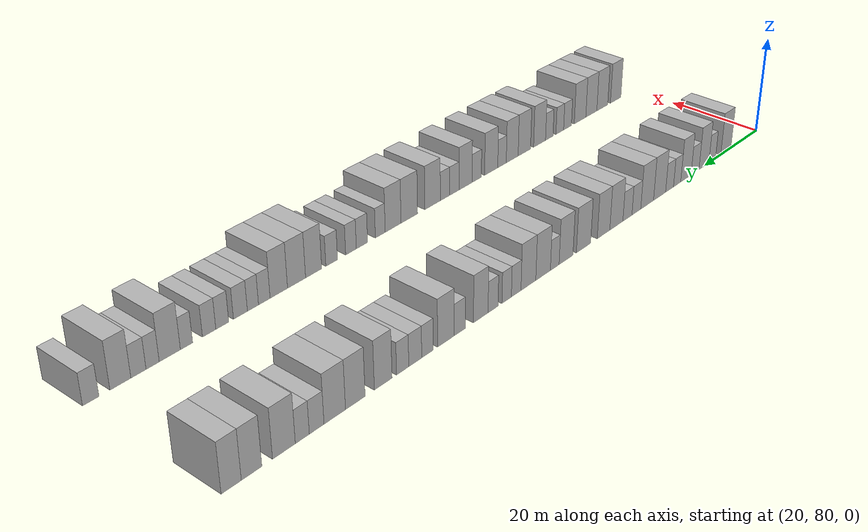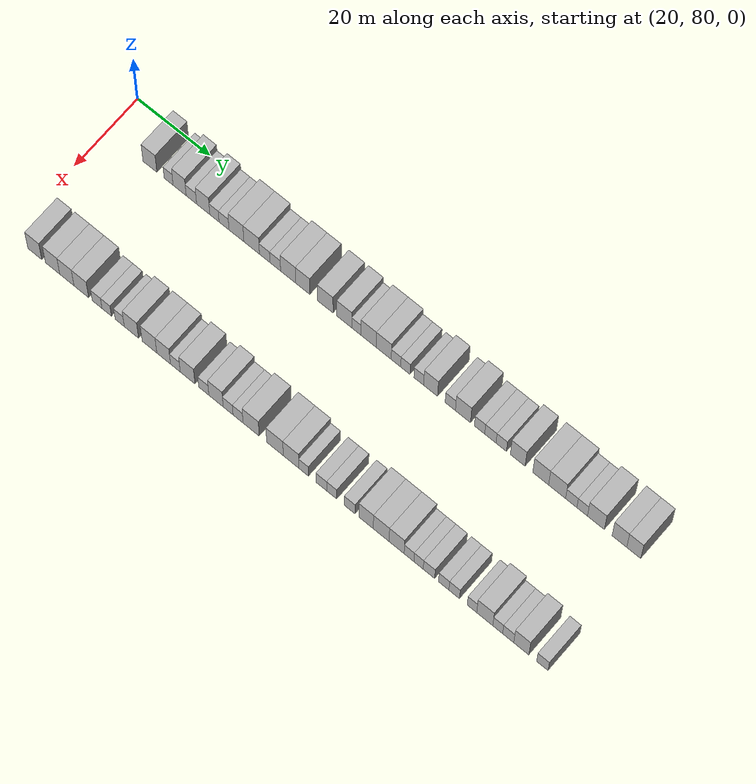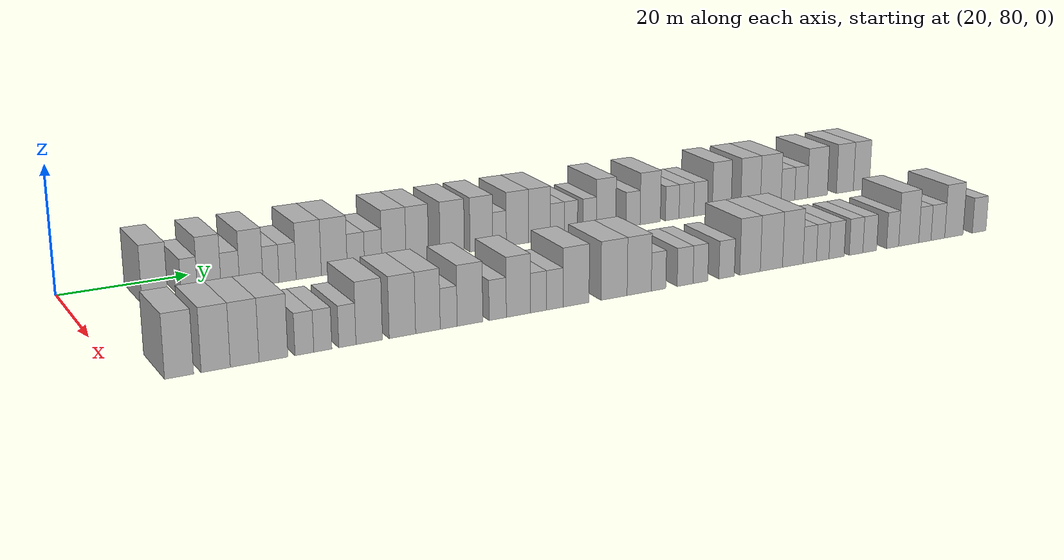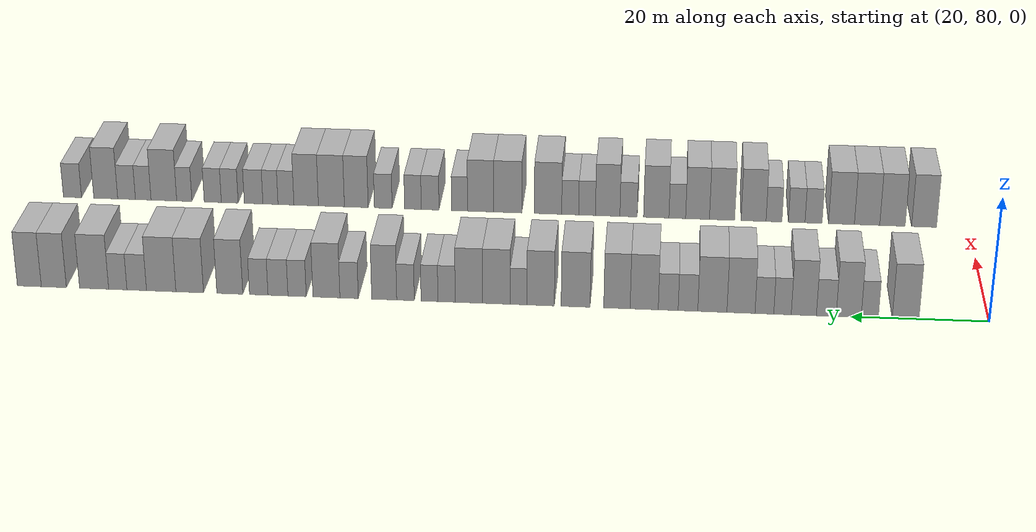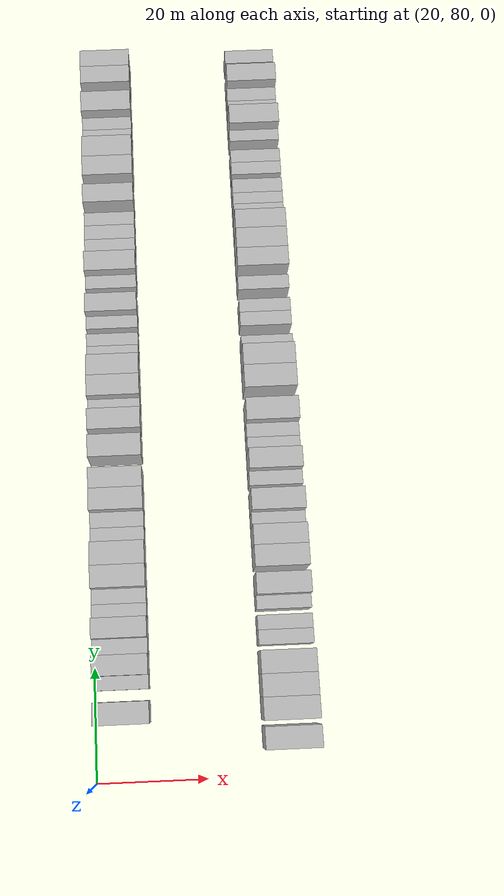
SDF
<sdf version="1.6">
 <world name="default">
  <model name="building_72">
   <static>1</static>
   <pose>25.0000 92.0905 0 0.000000 0.000000 0.000000</pose>
   <link name="link">
    <pose>0 0 4.50 0 0 0</pose>
    <collision name="collision"><geometry><box><size>10.0000 3.8415 9.0000</size></box></geometry></collision>
    <visual name="visual">
     <cast_shadows>0</cast_shadows>
     <geometry><box><size>10.0000 3.8415 9.0000</size></box></geometry>
     <material>
      <script>
       <uri>model://HANNAS_wall/materials/scripts</uri>
       <uri>model://HANNAS_wall/materials/textures</uri>
       <name>vrc/HANNAS_wall</name>
      </script>
     </material>
    </visual>
   </link>
  </model>
  <model name="building_73">
   <static>1</static>
   <pose>25.0000 97.2475 0 0.000000 0.000000 0.000000</pose>
   <link name="link">
    <pose>0 0 3.00 0 0 0</pose>
    <collision name="collision"><geometry><box><size>10.0000 2.4726 6.0000</size></box></geometry></collision>
    <visual name="visual">
     <cast_shadows>0</cast_shadows>
     <geometry><box><size>10.0000 2.4726 6.0000</size></box></geometry>
     <material>
      <script>
       <uri>model://HANNAS_wall/materials/scripts</uri>
       <uri>model://HANNAS_wall/materials/textures</uri>
       <name>vrc/HANNAS_wall</name>
      </script>
     </material>
    </visual>
   </link>
  </model>
  <model name="building_74">
   <static>1</static>
   <pose>25.0000 100.2885 0 0.000000 0.000000 0.000000</pose>
   <link name="link">
    <pose>0 0 4.50 0 0 0</pose>
    <collision name="collision"><geometry><box><size>10.0000 3.6093 9.0000</size></box></geometry></collision>
    <visual name="visual">
     <cast_shadows>0</cast_shadows>
     <geometry><box><size>10.0000 3.6093 9.0000</size></box></geometry>
     <material>
      <script>
       <uri>model://HANNAS_wall/materials/scripts</uri>
       <uri>model://HANNAS_wall/materials/textures</uri>
       <name>vrc/HANNAS_wall</name>
      </script>
     </material>
    </visual>
   </link>
  </model>
  <model name="building_75">
   <static>1</static>
   <pose>25.0000 103.5223 0 0.000000 0.000000 0.000000</pose>
   <link name="link">
    <pose>0 0 3.00 0 0 0</pose>
    <collision name="collision"><geometry><box><size>10.0000 2.8584 6.0000</size></box></geometry></collision>
    <visual name="visual">
     <cast_shadows>0</cast_shadows>
     <geometry><box><size>10.0000 2.8584 6.0000</size></box></geometry>
     <material>
      <script>
       <uri>model://HANNAS_wall/materials/scripts</uri>
       <uri>model://HANNAS_wall/materials/textures</uri>
       <name>vrc/HANNAS_wall</name>
      </script>
     </material>
    </visual>
   </link>
  </model>
  <model name="building_76">
   <static>1</static>
   <pose>25.0000 106.7729 0 0.000000 0.000000 0.000000</pose>
   <link name="link">
    <pose>0 0 4.50 0 0 0</pose>
    <collision name="collision"><geometry><box><size>10.0000 3.6430 9.0000</size></box></geometry></collision>
    <visual name="visual">
     <cast_shadows>0</cast_shadows>
     <geometry><box><size>10.0000 3.6430 9.0000</size></box></geometry>
     <material>
      <script>
       <uri>model://HANNAS_wall/materials/scripts</uri>
       <uri>model://HANNAS_wall/materials/textures</uri>
       <name>vrc/HANNAS_wall</name>
      </script>
     </material>
    </visual>
   </link>
  </model>
  <model name="building_77">
   <static>1</static>
   <pose>25.0000 109.8580 0 0.000000 0.000000 0.000000</pose>
   <link name="link">
    <pose>0 0 3.00 0 0 0</pose>
    <collision name="collision"><geometry><box><size>10.0000 2.5271 6.0000</size></box></geometry></collision>
    <visual name="visual">
     <cast_shadows>0</cast_shadows>
     <geometry><box><size>10.0000 2.5271 6.0000</size></box></geometry>
     <material>
      <script>
       <uri>model://HANNAS_wall/materials/scripts</uri>
       <uri>model://HANNAS_wall/materials/textures</uri>
       <name>vrc/HANNAS_wall</name>
      </script>
     </material>
    </visual>
   </link>
  </model>
  <model name="building_78">
   <static>1</static>
   <pose>25.0000 112.4826 0 0.000000 0.000000 0.000000</pose>
   <link name="link">
    <pose>0 0 3.00 0 0 0</pose>
    <collision name="collision"><geometry><box><size>10.0000 2.7220 6.0000</size></box></geometry></collision>
    <visual name="visual">
     <cast_shadows>0</cast_shadows>
     <geometry><box><size>10.0000 2.7220 6.0000</size></box></geometry>
     <material>
      <script>
       <uri>model://HANNAS_wall/materials/scripts</uri>
       <uri>model://HANNAS_wall/materials/textures</uri>
       <name>vrc/HANNAS_wall</name>
      </script>
     </material>
    </visual>
   </link>
  </model>
  <model name="building_79">
   <static>1</static>
   <pose>25.0000 115.8834 0 0.000000 0.000000 0.000000</pose>
   <link name="link">
    <pose>0 0 4.50 0 0 0</pose>
    <collision name="collision"><geometry><box><size>10.0000 4.0797 9.0000</size></box></geometry></collision>
    <visual name="visual">
     <cast_shadows>0</cast_shadows>
     <geometry><box><size>10.0000 4.0797 9.0000</size></box></geometry>
     <material>
      <script>
       <uri>model://HANNAS_wall/materials/scripts</uri>
       <uri>model://HANNAS_wall/materials/textures</uri>
       <name>vrc/HANNAS_wall</name>
      </script>
     </material>
    </visual>
   </link>
  </model>
  <model name="building_80">
   <static>1</static>
   <pose>25.0000 120.0440 0 0.000000 0.000000 0.000000</pose>
   <link name="link">
    <pose>0 0 4.50 0 0 0</pose>
    <collision name="collision"><geometry><box><size>10.0000 4.2415 9.0000</size></box></geometry></collision>
    <visual name="visual">
     <cast_shadows>0</cast_shadows>
     <geometry><box><size>10.0000 4.2415 9.0000</size></box></geometry>
     <material>
      <script>
       <uri>model://HANNAS_wall/materials/scripts</uri>
       <uri>model://HANNAS_wall/materials/textures</uri>
       <name>vrc/HANNAS_wall</name>
      </script>
     </material>
    </visual>
   </link>
  </model>
  <model name="building_81">
   <static>1</static>
   <pose>25.0000 123.5947 0 0.000000 0.000000 0.000000</pose>
   <link name="link">
    <pose>0 0 3.00 0 0 0</pose>
    <collision name="collision"><geometry><box><size>10.0000 2.8599 6.0000</size></box></geometry></collision>
    <visual name="visual">
     <cast_shadows>0</cast_shadows>
     <geometry><box><size>10.0000 2.8599 6.0000</size></box></geometry>
     <material>
      <script>
       <uri>model://HANNAS_wall/materials/scripts</uri>
       <uri>model://HANNAS_wall/materials/textures</uri>
       <name>vrc/HANNAS_wall</name>
      </script>
     </material>
    </visual>
   </link>
  </model>
  <model name="building_82">
   <static>1</static>
   <pose>25.0000 126.4744 0 0.000000 0.000000 0.000000</pose>
   <link name="link">
    <pose>0 0 3.00 0 0 0</pose>
    <collision name="collision"><geometry><box><size>10.0000 2.8995 6.0000</size></box></geometry></collision>
    <visual name="visual">
     <cast_shadows>0</cast_shadows>
     <geometry><box><size>10.0000 2.8995 6.0000</size></box></geometry>
     <material>
      <script>
       <uri>model://HANNAS_wall/materials/scripts</uri>
       <uri>model://HANNAS_wall/materials/textures</uri>
       <name>vrc/HANNAS_wall</name>
      </script>
     </material>
    </visual>
   </link>
  </model>
  <model name="building_83">
   <static>1</static>
   <pose>25.0000 129.9780 0 0.000000 0.000000 0.000000</pose>
   <link name="link">
    <pose>0 0 4.50 0 0 0</pose>
    <collision name="collision"><geometry><box><size>10.0000 4.1078 9.0000</size></box></geometry></collision>
    <visual name="visual">
     <cast_shadows>0</cast_shadows>
     <geometry><box><size>10.0000 4.1078 9.0000</size></box></geometry>
     <material>
      <script>
       <uri>model://HANNAS_wall/materials/scripts</uri>
       <uri>model://HANNAS_wall/materials/textures</uri>
       <name>vrc/HANNAS_wall</name>
      </script>
     </material>
    </visual>
   </link>
  </model>
  <model name="building_84">
   <static>1</static>
   <pose>25.0000 133.9613 0 0.000000 0.000000 0.000000</pose>
   <link name="link">
    <pose>0 0 4.50 0 0 0</pose>
    <collision name="collision"><geometry><box><size>10.0000 3.8587 9.0000</size></box></geometry></collision>
    <visual name="visual">
     <cast_shadows>0</cast_shadows>
     <geometry><box><size>10.0000 3.8587 9.0000</size></box></geometry>
     <material>
      <script>
       <uri>model://HANNAS_wall/materials/scripts</uri>
       <uri>model://HANNAS_wall/materials/textures</uri>
       <name>vrc/HANNAS_wall</name>
      </script>
     </material>
    </visual>
   </link>
  </model>
  <model name="building_85">
   <static>1</static>
   <pose>25.0000 140.0159 0 0.000000 0.000000 0.000000</pose>
   <link name="link">
    <pose>0 0 4.50 0 0 0</pose>
    <collision name="collision"><geometry><box><size>10.0000 4.2505 9.0000</size></box></geometry></collision>
    <visual name="visual">
     <cast_shadows>0</cast_shadows>
     <geometry><box><size>10.0000 4.2505 9.0000</size></box></geometry>
     <material>
      <script>
       <uri>model://HANNAS_wall/materials/scripts</uri>
       <uri>model://HANNAS_wall/materials/textures</uri>
       <name>vrc/HANNAS_wall</name>
      </script>
     </material>
    </visual>
   </link>
  </model>
  <model name="building_86">
   <static>1</static>
   <pose>25.0000 145.1519 0 0.000000 0.000000 0.000000</pose>
   <link name="link">
    <pose>0 0 4.50 0 0 0</pose>
    <collision name="collision"><geometry><box><size>10.0000 4.0214 9.0000</size></box></geometry></collision>
    <visual name="visual">
     <cast_shadows>0</cast_shadows>
     <geometry><box><size>10.0000 4.0214 9.0000</size></box></geometry>
     <material>
      <script>
       <uri>model://HANNAS_wall/materials/scripts</uri>
       <uri>model://HANNAS_wall/materials/textures</uri>
       <name>vrc/HANNAS_wall</name>
      </script>
     </material>
    </visual>
   </link>
  </model>
  <model name="building_87">
   <static>1</static>
   <pose>25.0000 148.3967 0 0.000000 0.000000 0.000000</pose>
   <link name="link">
    <pose>0 0 3.00 0 0 0</pose>
    <collision name="collision"><geometry><box><size>10.0000 2.4683 6.0000</size></box></geometry></collision>
    <visual name="visual">
     <cast_shadows>0</cast_shadows>
     <geometry><box><size>10.0000 2.4683 6.0000</size></box></geometry>
     <material>
      <script>
       <uri>model://HANNAS_wall/materials/scripts</uri>
       <uri>model://HANNAS_wall/materials/textures</uri>
       <name>vrc/HANNAS_wall</name>
      </script>
     </material>
    </visual>
   </link>
  </model>
  <model name="building_88">
   <static>1</static>
   <pose>25.0000 151.6659 0 0.000000 0.000000 0.000000</pose>
   <link name="link">
    <pose>0 0 4.50 0 0 0</pose>
    <collision name="collision"><geometry><box><size>10.0000 4.0700 9.0000</size></box></geometry></collision>
    <visual name="visual">
     <cast_shadows>0</cast_shadows>
     <geometry><box><size>10.0000 4.0700 9.0000</size></box></geometry>
     <material>
      <script>
       <uri>model://HANNAS_wall/materials/scripts</uri>
       <uri>model://HANNAS_wall/materials/textures</uri>
       <name>vrc/HANNAS_wall</name>
      </script>
     </material>
    </visual>
   </link>
  </model>
  <model name="building_89">
   <static>1</static>
   <pose>25.0000 155.7220 0 0.000000 0.000000 0.000000</pose>
   <link name="link">
    <pose>0 0 4.50 0 0 0</pose>
    <collision name="collision"><geometry><box><size>10.0000 4.0421 9.0000</size></box></geometry></collision>
    <visual name="visual">
     <cast_shadows>0</cast_shadows>
     <geometry><box><size>10.0000 4.0421 9.0000</size></box></geometry>
     <material>
      <script>
       <uri>model://HANNAS_wall/materials/scripts</uri>
       <uri>model://HANNAS_wall/materials/textures</uri>
       <name>vrc/HANNAS_wall</name>
      </script>
     </material>
    </visual>
   </link>
  </model>
  <model name="building_90">
   <static>1</static>
   <pose>25.0000 159.0225 0 0.000000 0.000000 0.000000</pose>
   <link name="link">
    <pose>0 0 3.00 0 0 0</pose>
    <collision name="collision"><geometry><box><size>10.0000 2.5588 6.0000</size></box></geometry></collision>
    <visual name="visual">
     <cast_shadows>0</cast_shadows>
     <geometry><box><size>10.0000 2.5588 6.0000</size></box></geometry>
     <material>
      <script>
       <uri>model://HANNAS_wall/materials/scripts</uri>
       <uri>model://HANNAS_wall/materials/textures</uri>
       <name>vrc/HANNAS_wall</name>
      </script>
     </material>
    </visual>
   </link>
  </model>
  <model name="building_91">
   <static>1</static>
   <pose>25.0000 161.5485 0 0.000000 0.000000 0.000000</pose>
   <link name="link">
    <pose>0 0 3.00 0 0 0</pose>
    <collision name="collision"><geometry><box><size>10.0000 2.4933 6.0000</size></box></geometry></collision>
    <visual name="visual">
     <cast_shadows>0</cast_shadows>
     <geometry><box><size>10.0000 2.4933 6.0000</size></box></geometry>
     <material>
      <script>
       <uri>model://HANNAS_wall/materials/scripts</uri>
       <uri>model://HANNAS_wall/materials/textures</uri>
       <name>vrc/HANNAS_wall</name>
      </script>
     </material>
    </visual>
   </link>
  </model>
  <model name="building_92">
   <static>1</static>
   <pose>25.0000 165.0945 0 0.000000 0.000000 0.000000</pose>
   <link name="link">
    <pose>0 0 3.00 0 0 0</pose>
    <collision name="collision"><geometry><box><size>10.0000 2.5987 6.0000</size></box></geometry></collision>
    <visual name="visual">
     <cast_shadows>0</cast_shadows>
     <geometry><box><size>10.0000 2.5987 6.0000</size></box></geometry>
     <material>
      <script>
       <uri>model://HANNAS_wall/materials/scripts</uri>
       <uri>model://HANNAS_wall/materials/textures</uri>
       <name>vrc/HANNAS_wall</name>
      </script>
     </material>
    </visual>
   </link>
  </model>
  <model name="building_93">
   <static>1</static>
   <pose>25.0000 168.2489 0 0.000000 0.000000 0.000000</pose>
   <link name="link">
    <pose>0 0 4.50 0 0 0</pose>
    <collision name="collision"><geometry><box><size>10.0000 3.7102 9.0000</size></box></geometry></collision>
    <visual name="visual">
     <cast_shadows>0</cast_shadows>
     <geometry><box><size>10.0000 3.7102 9.0000</size></box></geometry>
     <material>
      <script>
       <uri>model://HANNAS_wall/materials/scripts</uri>
       <uri>model://HANNAS_wall/materials/textures</uri>
       <name>vrc/HANNAS_wall</name>
      </script>
     </material>
    </visual>
   </link>
  </model>
  <model name="building_94">
   <static>1</static>
   <pose>25.0000 173.4689 0 0.000000 0.000000 0.000000</pose>
   <link name="link">
    <pose>0 0 3.00 0 0 0</pose>
    <collision name="collision"><geometry><box><size>10.0000 2.7299 6.0000</size></box></geometry></collision>
    <visual name="visual">
     <cast_shadows>0</cast_shadows>
     <geometry><box><size>10.0000 2.7299 6.0000</size></box></geometry>
     <material>
      <script>
       <uri>model://HANNAS_wall/materials/scripts</uri>
       <uri>model://HANNAS_wall/materials/textures</uri>
       <name>vrc/HANNAS_wall</name>
      </script>
     </material>
    </visual>
   </link>
  </model>
  <model name="building_95">
   <static>1</static>
   <pose>25.0000 176.8411 0 0.000000 0.000000 0.000000</pose>
   <link name="link">
    <pose>0 0 4.50 0 0 0</pose>
    <collision name="collision"><geometry><box><size>10.0000 4.0145 9.0000</size></box></geometry></collision>
    <visual name="visual">
     <cast_shadows>0</cast_shadows>
     <geometry><box><size>10.0000 4.0145 9.0000</size></box></geometry>
     <material>
      <script>
       <uri>model://HANNAS_wall/materials/scripts</uri>
       <uri>model://HANNAS_wall/materials/textures</uri>
       <name>vrc/HANNAS_wall</name>
      </script>
     </material>
    </visual>
   </link>
  </model>
  <model name="building_96">
   <static>1</static>
   <pose>25.0000 181.2125 0 0.000000 0.000000 0.000000</pose>
   <link name="link">
    <pose>0 0 3.00 0 0 0</pose>
    <collision name="collision"><geometry><box><size>10.0000 2.7283 6.0000</size></box></geometry></collision>
    <visual name="visual">
     <cast_shadows>0</cast_shadows>
     <geometry><box><size>10.0000 2.7283 6.0000</size></box></geometry>
     <material>
      <script>
       <uri>model://HANNAS_wall/materials/scripts</uri>
       <uri>model://HANNAS_wall/materials/textures</uri>
       <name>vrc/HANNAS_wall</name>
      </script>
     </material>
    </visual>
   </link>
  </model>
  <model name="building_97">
   <static>1</static>
   <pose>25.0000 184.0674 0 0.000000 0.000000 0.000000</pose>
   <link name="link">
    <pose>0 0 3.00 0 0 0</pose>
    <collision name="collision"><geometry><box><size>10.0000 2.9813 6.0000</size></box></geometry></collision>
    <visual name="visual">
     <cast_shadows>0</cast_shadows>
     <geometry><box><size>10.0000 2.9813 6.0000</size></box></geometry>
     <material>
      <script>
       <uri>model://HANNAS_wall/materials/scripts</uri>
       <uri>model://HANNAS_wall/materials/textures</uri>
       <name>vrc/HANNAS_wall</name>
      </script>
     </material>
    </visual>
   </link>
  </model>
  <model name="building_98">
   <static>1</static>
   <pose>25.0000 186.9393 0 0.000000 0.000000 0.000000</pose>
   <link name="link">
    <pose>0 0 3.00 0 0 0</pose>
    <collision name="collision"><geometry><box><size>10.0000 2.7625 6.0000</size></box></geometry></collision>
    <visual name="visual">
     <cast_shadows>0</cast_shadows>
     <geometry><box><size>10.0000 2.7625 6.0000</size></box></geometry>
     <material>
      <script>
       <uri>model://HANNAS_wall/materials/scripts</uri>
       <uri>model://HANNAS_wall/materials/textures</uri>
       <name>vrc/HANNAS_wall</name>
      </script>
     </material>
    </visual>
   </link>
  </model>
  <model name="building_99">
   <static>1</static>
   <pose>25.0000 191.2654 0 0.000000 0.000000 0.000000</pose>
   <link name="link">
    <pose>0 0 4.50 0 0 0</pose>
    <collision name="collision"><geometry><box><size>10.0000 3.8896 9.0000</size></box></geometry></collision>
    <visual name="visual">
     <cast_shadows>0</cast_shadows>
     <geometry><box><size>10.0000 3.8896 9.0000</size></box></geometry>
     <material>
      <script>
       <uri>model://HANNAS_wall/materials/scripts</uri>
       <uri>model://HANNAS_wall/materials/textures</uri>
       <name>vrc/HANNAS_wall</name>
      </script>
     </material>
    </visual>
   </link>
  </model>
  <model name="building_100">
   <static>1</static>
   <pose>25.0000 197.2828 0 0.000000 0.000000 0.000000</pose>
   <link name="link">
    <pose>0 0 4.50 0 0 0</pose>
    <collision name="collision"><geometry><box><size>10.0000 4.1453 9.0000</size></box></geometry></collision>
    <visual name="visual">
     <cast_shadows>0</cast_shadows>
     <geometry><box><size>10.0000 4.1453 9.0000</size></box></geometry>
     <material>
      <script>
       <uri>model://HANNAS_wall/materials/scripts</uri>
       <uri>model://HANNAS_wall/materials/textures</uri>
       <name>vrc/HANNAS_wall</name>
      </script>
     </material>
    </visual>
   </link>
  </model>
  <model name="building_101">
   <static>1</static>
   <pose>25.0000 201.5679 0 0.000000 0.000000 0.000000</pose>
   <link name="link">
    <pose>0 0 4.50 0 0 0</pose>
    <collision name="collision"><geometry><box><size>10.0000 4.4249 9.0000</size></box></geometry></collision>
    <visual name="visual">
     <cast_shadows>0</cast_shadows>
     <geometry><box><size>10.0000 4.4249 9.0000</size></box></geometry>
     <material>
      <script>
       <uri>model://HANNAS_wall/materials/scripts</uri>
       <uri>model://HANNAS_wall/materials/textures</uri>
       <name>vrc/HANNAS_wall</name>
      </script>
     </material>
    </visual>
   </link>
  </model>
  <model name="building_102">
   <static>1</static>
   <pose>25.0000 205.2544 0 0.000000 0.000000 0.000000</pose>
   <link name="link">
    <pose>0 0 3.00 0 0 0</pose>
    <collision name="collision"><geometry><box><size>10.0000 2.9481 6.0000</size></box></geometry></collision>
    <visual name="visual">
     <cast_shadows>0</cast_shadows>
     <geometry><box><size>10.0000 2.9481 6.0000</size></box></geometry>
     <material>
      <script>
       <uri>model://HANNAS_wall/materials/scripts</uri>
       <uri>model://HANNAS_wall/materials/textures</uri>
       <name>vrc/HANNAS_wall</name>
      </script>
     </material>
    </visual>
   </link>
  </model>
  <model name="building_103">
   <static>1</static>
   <pose>25.0000 208.1051 0 0.000000 0.000000 0.000000</pose>
   <link name="link">
    <pose>0 0 3.00 0 0 0</pose>
    <collision name="collision"><geometry><box><size>10.0000 2.7534 6.0000</size></box></geometry></collision>
    <visual name="visual">
     <cast_shadows>0</cast_shadows>
     <geometry><box><size>10.0000 2.7534 6.0000</size></box></geometry>
     <material>
      <script>
       <uri>model://HANNAS_wall/materials/scripts</uri>
       <uri>model://HANNAS_wall/materials/textures</uri>
       <name>vrc/HANNAS_wall</name>
      </script>
     </material>
    </visual>
   </link>
  </model>
  <model name="building_104">
   <static>1</static>
   <pose>25.0000 211.6756 0 0.000000 0.000000 0.000000</pose>
   <link name="link">
    <pose>0 0 4.50 0 0 0</pose>
    <collision name="collision"><geometry><box><size>10.0000 4.3877 9.0000</size></box></geometry></collision>
    <visual name="visual">
     <cast_shadows>0</cast_shadows>
     <geometry><box><size>10.0000 4.3877 9.0000</size></box></geometry>
     <material>
      <script>
       <uri>model://HANNAS_wall/materials/scripts</uri>
       <uri>model://HANNAS_wall/materials/textures</uri>
       <name>vrc/HANNAS_wall</name>
      </script>
     </material>
    </visual>
   </link>
  </model>
  <model name="building_105">
   <static>1</static>
   <pose>25.0000 217.7647 0 0.000000 0.000000 0.000000</pose>
   <link name="link">
    <pose>0 0 4.50 0 0 0</pose>
    <collision name="collision"><geometry><box><size>10.0000 3.7905 9.0000</size></box></geometry></collision>
    <visual name="visual">
     <cast_shadows>0</cast_shadows>
     <geometry><box><size>10.0000 3.7905 9.0000</size></box></geometry>
     <material>
      <script>
       <uri>model://HANNAS_wall/materials/scripts</uri>
       <uri>model://HANNAS_wall/materials/textures</uri>
       <name>vrc/HANNAS_wall</name>
      </script>
     </material>
    </visual>
   </link>
  </model>
  <model name="building_106">
   <static>1</static>
   <pose>25.0000 221.4762 0 0.000000 0.000000 0.000000</pose>
   <link name="link">
    <pose>0 0 4.50 0 0 0</pose>
    <collision name="collision"><geometry><box><size>10.0000 3.6324 9.0000</size></box></geometry></collision>
    <visual name="visual">
     <cast_shadows>0</cast_shadows>
     <geometry><box><size>10.0000 3.6324 9.0000</size></box></geometry>
     <material>
      <script>
       <uri>model://HANNAS_wall/materials/scripts</uri>
       <uri>model://HANNAS_wall/materials/textures</uri>
       <name>vrc/HANNAS_wall</name>
      </script>
     </material>
    </visual>
   </link>
  </model>
  <model name="building_180">
   <static>1</static>
   <pose>55.0000 86.8655 0 0.000000 0.000000 0.000000</pose>
   <link name="link">
    <pose>0 0 4.50 0 0 0</pose>
    <collision name="collision"><geometry><box><size>10.0000 3.8655 9.0000</size></box></geometry></collision>
    <visual name="visual">
     <cast_shadows>0</cast_shadows>
     <geometry><box><size>10.0000 3.8655 9.0000</size></box></geometry>
     <material>
      <script>
       <uri>model://HANNAS_wall/materials/scripts</uri>
       <uri>model://HANNAS_wall/materials/textures</uri>
       <name>vrc/HANNAS_wall</name>
      </script>
     </material>
    </visual>
   </link>
  </model>
  <model name="building_181">
   <static>1</static>
   <pose>55.0000 91.7752 0 0.000000 0.000000 0.000000</pose>
   <link name="link">
    <pose>0 0 4.50 0 0 0</pose>
    <collision name="collision"><geometry><box><size>10.0000 3.9539 9.0000</size></box></geometry></collision>
    <visual name="visual">
     <cast_shadows>0</cast_shadows>
     <geometry><box><size>10.0000 3.9539 9.0000</size></box></geometry>
     <material>
      <script>
       <uri>model://HANNAS_wall/materials/scripts</uri>
       <uri>model://HANNAS_wall/materials/textures</uri>
       <name>vrc/HANNAS_wall</name>
      </script>
     </material>
    </visual>
   </link>
  </model>
  <model name="building_182">
   <static>1</static>
   <pose>55.0000 95.7240 0 0.000000 0.000000 0.000000</pose>
   <link name="link">
    <pose>0 0 4.50 0 0 0</pose>
    <collision name="collision"><geometry><box><size>10.0000 3.9437 9.0000</size></box></geometry></collision>
    <visual name="visual">
     <cast_shadows>0</cast_shadows>
     <geometry><box><size>10.0000 3.9437 9.0000</size></box></geometry>
     <material>
      <script>
       <uri>model://HANNAS_wall/materials/scripts</uri>
       <uri>model://HANNAS_wall/materials/textures</uri>
       <name>vrc/HANNAS_wall</name>
      </script>
     </material>
    </visual>
   </link>
  </model>
  <model name="building_183">
   <static>1</static>
   <pose>55.0000 99.7126 0 0.000000 0.000000 0.000000</pose>
   <link name="link">
    <pose>0 0 4.50 0 0 0</pose>
    <collision name="collision"><geometry><box><size>10.0000 4.0335 9.0000</size></box></geometry></collision>
    <visual name="visual">
     <cast_shadows>0</cast_shadows>
     <geometry><box><size>10.0000 4.0335 9.0000</size></box></geometry>
     <material>
      <script>
       <uri>model://HANNAS_wall/materials/scripts</uri>
       <uri>model://HANNAS_wall/materials/textures</uri>
       <name>vrc/HANNAS_wall</name>
      </script>
     </material>
    </visual>
   </link>
  </model>
  <model name="building_184">
   <static>1</static>
   <pose>55.0000 104.0659 0 0.000000 0.000000 0.000000</pose>
   <link name="link">
    <pose>0 0 3.00 0 0 0</pose>
    <collision name="collision"><geometry><box><size>10.0000 2.6730 6.0000</size></box></geometry></collision>
    <visual name="visual">
     <cast_shadows>0</cast_shadows>
     <geometry><box><size>10.0000 2.6730 6.0000</size></box></geometry>
     <material>
      <script>
       <uri>model://HANNAS_wall/materials/scripts</uri>
       <uri>model://HANNAS_wall/materials/textures</uri>
       <name>vrc/HANNAS_wall</name>
      </script>
     </material>
    </visual>
   </link>
  </model>
  <model name="building_185">
   <static>1</static>
   <pose>55.0000 106.7008 0 0.000000 0.000000 0.000000</pose>
   <link name="link">
    <pose>0 0 3.00 0 0 0</pose>
    <collision name="collision"><geometry><box><size>10.0000 2.5969 6.0000</size></box></geometry></collision>
    <visual name="visual">
     <cast_shadows>0</cast_shadows>
     <geometry><box><size>10.0000 2.5969 6.0000</size></box></geometry>
     <material>
      <script>
       <uri>model://HANNAS_wall/materials/scripts</uri>
       <uri>model://HANNAS_wall/materials/textures</uri>
       <name>vrc/HANNAS_wall</name>
      </script>
     </material>
    </visual>
   </link>
  </model>
  <model name="building_186">
   <static>1</static>
   <pose>55.0000 110.2476 0 0.000000 0.000000 0.000000</pose>
   <link name="link">
    <pose>0 0 3.00 0 0 0</pose>
    <collision name="collision"><geometry><box><size>10.0000 2.4967 6.0000</size></box></geometry></collision>
    <visual name="visual">
     <cast_shadows>0</cast_shadows>
     <geometry><box><size>10.0000 2.4967 6.0000</size></box></geometry>
     <material>
      <script>
       <uri>model://HANNAS_wall/materials/scripts</uri>
       <uri>model://HANNAS_wall/materials/textures</uri>
       <name>vrc/HANNAS_wall</name>
      </script>
     </material>
    </visual>
   </link>
  </model>
  <model name="building_187">
   <static>1</static>
   <pose>55.0000 113.4523 0 0.000000 0.000000 0.000000</pose>
   <link name="link">
    <pose>0 0 4.50 0 0 0</pose>
    <collision name="collision"><geometry><box><size>10.0000 3.9126 9.0000</size></box></geometry></collision>
    <visual name="visual">
     <cast_shadows>0</cast_shadows>
     <geometry><box><size>10.0000 3.9126 9.0000</size></box></geometry>
     <material>
      <script>
       <uri>model://HANNAS_wall/materials/scripts</uri>
       <uri>model://HANNAS_wall/materials/textures</uri>
       <name>vrc/HANNAS_wall</name>
      </script>
     </material>
    </visual>
   </link>
  </model>
  <model name="building_188">
   <static>1</static>
   <pose>55.0000 118.3908 0 0.000000 0.000000 0.000000</pose>
   <link name="link">
    <pose>0 0 4.50 0 0 0</pose>
    <collision name="collision"><geometry><box><size>10.0000 3.9645 9.0000</size></box></geometry></collision>
    <visual name="visual">
     <cast_shadows>0</cast_shadows>
     <geometry><box><size>10.0000 3.9645 9.0000</size></box></geometry>
     <material>
      <script>
       <uri>model://HANNAS_wall/materials/scripts</uri>
       <uri>model://HANNAS_wall/materials/textures</uri>
       <name>vrc/HANNAS_wall</name>
      </script>
     </material>
    </visual>
   </link>
  </model>
  <model name="building_189">
   <static>1</static>
   <pose>55.0000 122.2470 0 0.000000 0.000000 0.000000</pose>
   <link name="link">
    <pose>0 0 4.50 0 0 0</pose>
    <collision name="collision"><geometry><box><size>10.0000 3.7478 9.0000</size></box></geometry></collision>
    <visual name="visual">
     <cast_shadows>0</cast_shadows>
     <geometry><box><size>10.0000 3.7478 9.0000</size></box></geometry>
     <material>
      <script>
       <uri>model://HANNAS_wall/materials/scripts</uri>
       <uri>model://HANNAS_wall/materials/textures</uri>
       <name>vrc/HANNAS_wall</name>
      </script>
     </material>
    </visual>
   </link>
  </model>
  <model name="building_190">
   <static>1</static>
   <pose>55.0000 125.4338 0 0.000000 0.000000 0.000000</pose>
   <link name="link">
    <pose>0 0 3.00 0 0 0</pose>
    <collision name="collision"><geometry><box><size>10.0000 2.6258 6.0000</size></box></geometry></collision>
    <visual name="visual">
     <cast_shadows>0</cast_shadows>
     <geometry><box><size>10.0000 2.6258 6.0000</size></box></geometry>
     <material>
      <script>
       <uri>model://HANNAS_wall/materials/scripts</uri>
       <uri>model://HANNAS_wall/materials/textures</uri>
       <name>vrc/HANNAS_wall</name>
      </script>
     </material>
    </visual>
   </link>
  </model>
  <model name="building_191">
   <static>1</static>
   <pose>55.0000 128.7450 0 0.000000 0.000000 0.000000</pose>
   <link name="link">
    <pose>0 0 4.50 0 0 0</pose>
    <collision name="collision"><geometry><box><size>10.0000 3.9966 9.0000</size></box></geometry></collision>
    <visual name="visual">
     <cast_shadows>0</cast_shadows>
     <geometry><box><size>10.0000 3.9966 9.0000</size></box></geometry>
     <material>
      <script>
       <uri>model://HANNAS_wall/materials/scripts</uri>
       <uri>model://HANNAS_wall/materials/textures</uri>
       <name>vrc/HANNAS_wall</name>
      </script>
     </material>
    </visual>
   </link>
  </model>
  <model name="building_192">
   <static>1</static>
   <pose>55.0000 133.1119 0 0.000000 0.000000 0.000000</pose>
   <link name="link">
    <pose>0 0 3.00 0 0 0</pose>
    <collision name="collision"><geometry><box><size>10.0000 2.7372 6.0000</size></box></geometry></collision>
    <visual name="visual">
     <cast_shadows>0</cast_shadows>
     <geometry><box><size>10.0000 2.7372 6.0000</size></box></geometry>
     <material>
      <script>
       <uri>model://HANNAS_wall/materials/scripts</uri>
       <uri>model://HANNAS_wall/materials/textures</uri>
       <name>vrc/HANNAS_wall</name>
      </script>
     </material>
    </visual>
   </link>
  </model>
  <model name="building_193">
   <static>1</static>
   <pose>55.0000 136.4149 0 0.000000 0.000000 0.000000</pose>
   <link name="link">
    <pose>0 0 4.50 0 0 0</pose>
    <collision name="collision"><geometry><box><size>10.0000 3.8687 9.0000</size></box></geometry></collision>
    <visual name="visual">
     <cast_shadows>0</cast_shadows>
     <geometry><box><size>10.0000 3.8687 9.0000</size></box></geometry>
     <material>
      <script>
       <uri>model://HANNAS_wall/materials/scripts</uri>
       <uri>model://HANNAS_wall/materials/textures</uri>
       <name>vrc/HANNAS_wall</name>
      </script>
     </material>
    </visual>
   </link>
  </model>
  <model name="building_194">
   <static>1</static>
   <pose>55.0000 139.6726 0 0.000000 0.000000 0.000000</pose>
   <link name="link">
    <pose>0 0 3.00 0 0 0</pose>
    <collision name="collision"><geometry><box><size>10.0000 2.6466 6.0000</size></box></geometry></collision>
    <visual name="visual">
     <cast_shadows>0</cast_shadows>
     <geometry><box><size>10.0000 2.6466 6.0000</size></box></geometry>
     <material>
      <script>
       <uri>model://HANNAS_wall/materials/scripts</uri>
       <uri>model://HANNAS_wall/materials/textures</uri>
       <name>vrc/HANNAS_wall</name>
      </script>
     </material>
    </visual>
   </link>
  </model>
  <model name="building_195">
   <static>1</static>
   <pose>55.0000 142.3447 0 0.000000 0.000000 0.000000</pose>
   <link name="link">
    <pose>0 0 3.00 0 0 0</pose>
    <collision name="collision"><geometry><box><size>10.0000 2.6977 6.0000</size></box></geometry></collision>
    <visual name="visual">
     <cast_shadows>0</cast_shadows>
     <geometry><box><size>10.0000 2.6977 6.0000</size></box></geometry>
     <material>
      <script>
       <uri>model://HANNAS_wall/materials/scripts</uri>
       <uri>model://HANNAS_wall/materials/textures</uri>
       <name>vrc/HANNAS_wall</name>
      </script>
     </material>
    </visual>
   </link>
  </model>
  <model name="building_196">
   <static>1</static>
   <pose>55.0000 145.8602 0 0.000000 0.000000 0.000000</pose>
   <link name="link">
    <pose>0 0 4.50 0 0 0</pose>
    <collision name="collision"><geometry><box><size>10.0000 4.3333 9.0000</size></box></geometry></collision>
    <visual name="visual">
     <cast_shadows>0</cast_shadows>
     <geometry><box><size>10.0000 4.3333 9.0000</size></box></geometry>
     <material>
      <script>
       <uri>model://HANNAS_wall/materials/scripts</uri>
       <uri>model://HANNAS_wall/materials/textures</uri>
       <name>vrc/HANNAS_wall</name>
      </script>
     </material>
    </visual>
   </link>
  </model>
  <model name="building_197">
   <static>1</static>
   <pose>55.0000 152.2572 0 0.000000 0.000000 0.000000</pose>
   <link name="link">
    <pose>0 0 4.50 0 0 0</pose>
    <collision name="collision"><geometry><box><size>10.0000 4.4607 9.0000</size></box></geometry></collision>
    <visual name="visual">
     <cast_shadows>0</cast_shadows>
     <geometry><box><size>10.0000 4.4607 9.0000</size></box></geometry>
     <material>
      <script>
       <uri>model://HANNAS_wall/materials/scripts</uri>
       <uri>model://HANNAS_wall/materials/textures</uri>
       <name>vrc/HANNAS_wall</name>
      </script>
     </material>
    </visual>
   </link>
  </model>
  <model name="building_198">
   <static>1</static>
   <pose>55.0000 156.5786 0 0.000000 0.000000 0.000000</pose>
   <link name="link">
    <pose>0 0 4.50 0 0 0</pose>
    <collision name="collision"><geometry><box><size>10.0000 4.1822 9.0000</size></box></geometry></collision>
    <visual name="visual">
     <cast_shadows>0</cast_shadows>
     <geometry><box><size>10.0000 4.1822 9.0000</size></box></geometry>
     <material>
      <script>
       <uri>model://HANNAS_wall/materials/scripts</uri>
       <uri>model://HANNAS_wall/materials/textures</uri>
       <name>vrc/HANNAS_wall</name>
      </script>
     </material>
    </visual>
   </link>
  </model>
  <model name="building_199">
   <static>1</static>
   <pose>55.0000 159.9440 0 0.000000 0.000000 0.000000</pose>
   <link name="link">
    <pose>0 0 3.00 0 0 0</pose>
    <collision name="collision"><geometry><box><size>10.0000 2.5484 6.0000</size></box></geometry></collision>
    <visual name="visual">
     <cast_shadows>0</cast_shadows>
     <geometry><box><size>10.0000 2.5484 6.0000</size></box></geometry>
     <material>
      <script>
       <uri>model://HANNAS_wall/materials/scripts</uri>
       <uri>model://HANNAS_wall/materials/textures</uri>
       <name>vrc/HANNAS_wall</name>
      </script>
     </material>
    </visual>
   </link>
  </model>
  <model name="building_200">
   <static>1</static>
   <pose>55.0000 164.6369 0 0.000000 0.000000 0.000000</pose>
   <link name="link">
    <pose>0 0 3.00 0 0 0</pose>
    <collision name="collision"><geometry><box><size>10.0000 2.8374 6.0000</size></box></geometry></collision>
    <visual name="visual">
     <cast_shadows>0</cast_shadows>
     <geometry><box><size>10.0000 2.8374 6.0000</size></box></geometry>
     <material>
      <script>
       <uri>model://HANNAS_wall/materials/scripts</uri>
       <uri>model://HANNAS_wall/materials/textures</uri>
       <name>vrc/HANNAS_wall</name>
      </script>
     </material>
    </visual>
   </link>
  </model>
  <model name="building_201">
   <static>1</static>
   <pose>55.0000 167.3853 0 0.000000 0.000000 0.000000</pose>
   <link name="link">
    <pose>0 0 3.00 0 0 0</pose>
    <collision name="collision"><geometry><box><size>10.0000 2.6594 6.0000</size></box></geometry></collision>
    <visual name="visual">
     <cast_shadows>0</cast_shadows>
     <geometry><box><size>10.0000 2.6594 6.0000</size></box></geometry>
     <material>
      <script>
       <uri>model://HANNAS_wall/materials/scripts</uri>
       <uri>model://HANNAS_wall/materials/textures</uri>
       <name>vrc/HANNAS_wall</name>
      </script>
     </material>
    </visual>
   </link>
  </model>
  <model name="building_202">
   <static>1</static>
   <pose>55.0000 172.1321 0 0.000000 0.000000 0.000000</pose>
   <link name="link">
    <pose>0 0 3.00 0 0 0</pose>
    <collision name="collision"><geometry><box><size>10.0000 2.8343 6.0000</size></box></geometry></collision>
    <visual name="visual">
     <cast_shadows>0</cast_shadows>
     <geometry><box><size>10.0000 2.8343 6.0000</size></box></geometry>
     <material>
      <script>
       <uri>model://HANNAS_wall/materials/scripts</uri>
       <uri>model://HANNAS_wall/materials/textures</uri>
       <name>vrc/HANNAS_wall</name>
      </script>
     </material>
    </visual>
   </link>
  </model>
  <model name="building_203">
   <static>1</static>
   <pose>55.0000 176.4563 0 0.000000 0.000000 0.000000</pose>
   <link name="link">
    <pose>0 0 4.50 0 0 0</pose>
    <collision name="collision"><geometry><box><size>10.0000 3.8142 9.0000</size></box></geometry></collision>
    <visual name="visual">
     <cast_shadows>0</cast_shadows>
     <geometry><box><size>10.0000 3.8142 9.0000</size></box></geometry>
     <material>
      <script>
       <uri>model://HANNAS_wall/materials/scripts</uri>
       <uri>model://HANNAS_wall/materials/textures</uri>
       <name>vrc/HANNAS_wall</name>
      </script>
     </material>
    </visual>
   </link>
  </model>
  <model name="building_204">
   <static>1</static>
   <pose>55.0000 180.4533 0 0.000000 0.000000 0.000000</pose>
   <link name="link">
    <pose>0 0 4.50 0 0 0</pose>
    <collision name="collision"><geometry><box><size>10.0000 4.1797 9.0000</size></box></geometry></collision>
    <visual name="visual">
     <cast_shadows>0</cast_shadows>
     <geometry><box><size>10.0000 4.1797 9.0000</size></box></geometry>
     <material>
      <script>
       <uri>model://HANNAS_wall/materials/scripts</uri>
       <uri>model://HANNAS_wall/materials/textures</uri>
       <name>vrc/HANNAS_wall</name>
      </script>
     </material>
    </visual>
   </link>
  </model>
  <model name="building_205">
   <static>1</static>
   <pose>55.0000 184.5144 0 0.000000 0.000000 0.000000</pose>
   <link name="link">
    <pose>0 0 4.50 0 0 0</pose>
    <collision name="collision"><geometry><box><size>10.0000 3.9427 9.0000</size></box></geometry></collision>
    <visual name="visual">
     <cast_shadows>0</cast_shadows>
     <geometry><box><size>10.0000 3.9427 9.0000</size></box></geometry>
     <material>
      <script>
       <uri>model://HANNAS_wall/materials/scripts</uri>
       <uri>model://HANNAS_wall/materials/textures</uri>
       <name>vrc/HANNAS_wall</name>
      </script>
     </material>
    </visual>
   </link>
  </model>
  <model name="building_206">
   <static>1</static>
   <pose>55.0000 187.7689 0 0.000000 0.000000 0.000000</pose>
   <link name="link">
    <pose>0 0 3.00 0 0 0</pose>
    <collision name="collision"><geometry><box><size>10.0000 2.5663 6.0000</size></box></geometry></collision>
    <visual name="visual">
     <cast_shadows>0</cast_shadows>
     <geometry><box><size>10.0000 2.5663 6.0000</size></box></geometry>
     <material>
      <script>
       <uri>model://HANNAS_wall/materials/scripts</uri>
       <uri>model://HANNAS_wall/materials/textures</uri>
       <name>vrc/HANNAS_wall</name>
      </script>
     </material>
    </visual>
   </link>
  </model>
  <model name="building_207">
   <static>1</static>
   <pose>55.0000 190.2684 0 0.000000 0.000000 0.000000</pose>
   <link name="link">
    <pose>0 0 3.00 0 0 0</pose>
    <collision name="collision"><geometry><box><size>10.0000 2.4327 6.0000</size></box></geometry></collision>
    <visual name="visual">
     <cast_shadows>0</cast_shadows>
     <geometry><box><size>10.0000 2.4327 6.0000</size></box></geometry>
     <material>
      <script>
       <uri>model://HANNAS_wall/materials/scripts</uri>
       <uri>model://HANNAS_wall/materials/textures</uri>
       <name>vrc/HANNAS_wall</name>
      </script>
     </material>
    </visual>
   </link>
  </model>
  <model name="building_208">
   <static>1</static>
   <pose>55.0000 192.9847 0 0.000000 0.000000 0.000000</pose>
   <link name="link">
    <pose>0 0 3.00 0 0 0</pose>
    <collision name="collision"><geometry><box><size>10.0000 2.9998 6.0000</size></box></geometry></collision>
    <visual name="visual">
     <cast_shadows>0</cast_shadows>
     <geometry><box><size>10.0000 2.9998 6.0000</size></box></geometry>
     <material>
      <script>
       <uri>model://HANNAS_wall/materials/scripts</uri>
       <uri>model://HANNAS_wall/materials/textures</uri>
       <name>vrc/HANNAS_wall</name>
      </script>
     </material>
    </visual>
   </link>
  </model>
  <model name="building_209">
   <static>1</static>
   <pose>55.0000 196.8431 0 0.000000 0.000000 0.000000</pose>
   <link name="link">
    <pose>0 0 3.00 0 0 0</pose>
    <collision name="collision"><geometry><box><size>10.0000 2.7171 6.0000</size></box></geometry></collision>
    <visual name="visual">
     <cast_shadows>0</cast_shadows>
     <geometry><box><size>10.0000 2.7171 6.0000</size></box></geometry>
     <material>
      <script>
       <uri>model://HANNAS_wall/materials/scripts</uri>
       <uri>model://HANNAS_wall/materials/textures</uri>
       <name>vrc/HANNAS_wall</name>
      </script>
     </material>
    </visual>
   </link>
  </model>
  <model name="building_210">
   <static>1</static>
   <pose>55.0000 199.5848 0 0.000000 0.000000 0.000000</pose>
   <link name="link">
    <pose>0 0 3.00 0 0 0</pose>
    <collision name="collision"><geometry><box><size>10.0000 2.7662 6.0000</size></box></geometry></collision>
    <visual name="visual">
     <cast_shadows>0</cast_shadows>
     <geometry><box><size>10.0000 2.7662 6.0000</size></box></geometry>
     <material>
      <script>
       <uri>model://HANNAS_wall/materials/scripts</uri>
       <uri>model://HANNAS_wall/materials/textures</uri>
       <name>vrc/HANNAS_wall</name>
      </script>
     </material>
    </visual>
   </link>
  </model>
  <model name="building_211">
   <static>1</static>
   <pose>55.0000 204.2018 0 0.000000 0.000000 0.000000</pose>
   <link name="link">
    <pose>0 0 3.00 0 0 0</pose>
    <collision name="collision"><geometry><box><size>10.0000 2.4678 6.0000</size></box></geometry></collision>
    <visual name="visual">
     <cast_shadows>0</cast_shadows>
     <geometry><box><size>10.0000 2.4678 6.0000</size></box></geometry>
     <material>
      <script>
       <uri>model://HANNAS_wall/materials/scripts</uri>
       <uri>model://HANNAS_wall/materials/textures</uri>
       <name>vrc/HANNAS_wall</name>
      </script>
     </material>
    </visual>
   </link>
  </model>
  <model name="building_212">
   <static>1</static>
   <pose>55.0000 207.5195 0 0.000000 0.000000 0.000000</pose>
   <link name="link">
    <pose>0 0 4.50 0 0 0</pose>
    <collision name="collision"><geometry><box><size>10.0000 4.1676 9.0000</size></box></geometry></collision>
    <visual name="visual">
     <cast_shadows>0</cast_shadows>
     <geometry><box><size>10.0000 4.1676 9.0000</size></box></geometry>
     <material>
      <script>
       <uri>model://HANNAS_wall/materials/scripts</uri>
       <uri>model://HANNAS_wall/materials/textures</uri>
       <name>vrc/HANNAS_wall</name>
      </script>
     </material>
    </visual>
   </link>
  </model>
  <model name="building_213">
   <static>1</static>
   <pose>55.0000 210.8751 0 0.000000 0.000000 0.000000</pose>
   <link name="link">
    <pose>0 0 3.00 0 0 0</pose>
    <collision name="collision"><geometry><box><size>10.0000 2.5436 6.0000</size></box></geometry></collision>
    <visual name="visual">
     <cast_shadows>0</cast_shadows>
     <geometry><box><size>10.0000 2.5436 6.0000</size></box></geometry>
     <material>
      <script>
       <uri>model://HANNAS_wall/materials/scripts</uri>
       <uri>model://HANNAS_wall/materials/textures</uri>
       <name>vrc/HANNAS_wall</name>
      </script>
     </material>
    </visual>
   </link>
  </model>
  <model name="building_214">
   <static>1</static>
   <pose>55.0000 213.5888 0 0.000000 0.000000 0.000000</pose>
   <link name="link">
    <pose>0 0 3.00 0 0 0</pose>
    <collision name="collision"><geometry><box><size>10.0000 2.8837 6.0000</size></box></geometry></collision>
    <visual name="visual">
     <cast_shadows>0</cast_shadows>
     <geometry><box><size>10.0000 2.8837 6.0000</size></box></geometry>
     <material>
      <script>
       <uri>model://HANNAS_wall/materials/scripts</uri>
       <uri>model://HANNAS_wall/materials/textures</uri>
       <name>vrc/HANNAS_wall</name>
      </script>
     </material>
    </visual>
   </link>
  </model>
  <model name="building_215">
   <static>1</static>
   <pose>55.0000 216.9767 0 0.000000 0.000000 0.000000</pose>
   <link name="link">
    <pose>0 0 4.50 0 0 0</pose>
    <collision name="collision"><geometry><box><size>10.0000 3.8922 9.0000</size></box></geometry></collision>
    <visual name="visual">
     <cast_shadows>0</cast_shadows>
     <geometry><box><size>10.0000 3.8922 9.0000</size></box></geometry>
     <material>
      <script>
       <uri>model://HANNAS_wall/materials/scripts</uri>
       <uri>model://HANNAS_wall/materials/textures</uri>
       <name>vrc/HANNAS_wall</name>
      </script>
     </material>
    </visual>
   </link>
  </model>
  <model name="building_216">
   <static>1</static>
   <pose>55.0000 222.3999 0 0.000000 0.000000 0.000000</pose>
   <link name="link">
    <pose>0 0 3.00 0 0 0</pose>
    <collision name="collision"><geometry><box><size>10.0000 2.9543 6.0000</size></box></geometry></collision>
    <visual name="visual">
     <cast_shadows>0</cast_shadows>
     <geometry><box><size>10.0000 2.9543 6.0000</size></box></geometry>
     <material>
      <script>
       <uri>model://HANNAS_wall/materials/scripts</uri>
       <uri>model://HANNAS_wall/materials/textures</uri>
       <name>vrc/HANNAS_wall</name>
      </script>
     </material>
    </visual>
   </link>
  </model>
 </world>
</sdf>
